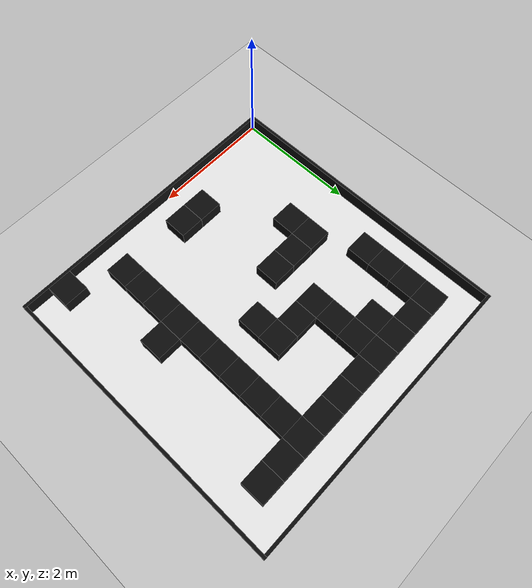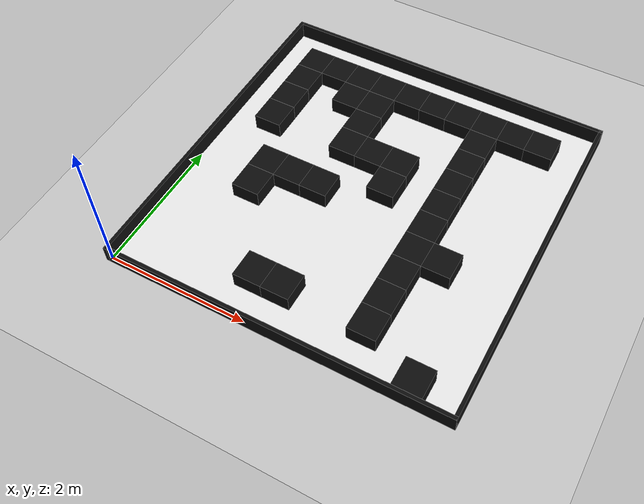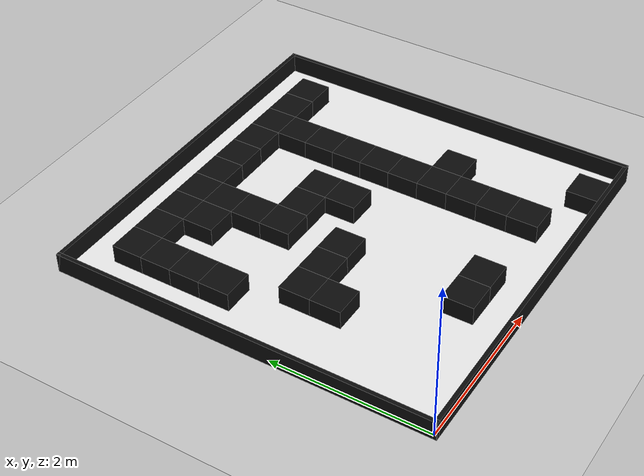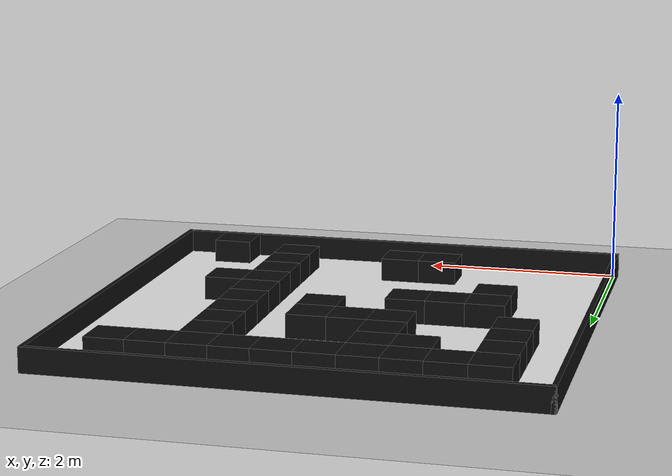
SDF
<?xml version="1.0" ?>
<sdf version="1.6">
  <world name="maze_3x3">
    <include><uri>model://sun</uri></include>
    <include><uri>model://ground_plane</uri></include>
    <model name="floor">
      <static>true</static>
      <link name="link">
        <pose>2.400000 2.400000 0.005 0 0 0</pose>
        <visual name="vis">
          <geometry><box><size>4.800000 4.800000 0.01</size></box></geometry>
          <material><ambient>0.95 0.95 0.95 1</ambient><diffuse>0.95 0.95 0.95 1</diffuse></material>
        </visual>
      </link>
    </model>
    <model name="wall_west">
      <static>true</static>
      <link name="link">
        <pose>-0.025000 2.400000 0.125000 0 0 0</pose>
        <collision name="col"><geometry><box><size>0.050000 4.900000 0.250000</size></box></geometry></collision>
        <visual name="vis">
          <geometry><box><size>0.050000 4.900000 0.250000</size></box></geometry>
          <material><ambient>0.05 0.05 0.05 1</ambient><diffuse>0.05 0.05 0.05 1</diffuse></material>
        </visual>
      </link>
    </model>
    <model name="wall_east">
      <static>true</static>
      <link name="link">
        <pose>4.825000 2.400000 0.125000 0 0 0</pose>
        <collision name="col"><geometry><box><size>0.050000 4.900000 0.250000</size></box></geometry></collision>
        <visual name="vis">
          <geometry><box><size>0.050000 4.900000 0.250000</size></box></geometry>
          <material><ambient>0.05 0.05 0.05 1</ambient><diffuse>0.05 0.05 0.05 1</diffuse></material>
        </visual>
      </link>
    </model>
    <model name="wall_south">
      <static>true</static>
      <link name="link">
        <pose>2.400000 -0.025000 0.125000 0 0 0</pose>
        <collision name="col"><geometry><box><size>4.900000 0.050000 0.250000</size></box></geometry></collision>
        <visual name="vis">
          <geometry><box><size>4.900000 0.050000 0.250000</size></box></geometry>
          <material><ambient>0.05 0.05 0.05 1</ambient><diffuse>0.05 0.05 0.05 1</diffuse></material>
        </visual>
      </link>
    </model>
    <model name="wall_north">
      <static>true</static>
      <link name="link">
        <pose>2.400000 4.825000 0.125000 0 0 0</pose>
        <collision name="col"><geometry><box><size>4.900000 0.050000 0.250000</size></box></geometry></collision>
        <visual name="vis">
          <geometry><box><size>4.900000 0.050000 0.250000</size></box></geometry>
          <material><ambient>0.05 0.05 0.05 1</ambient><diffuse>0.05 0.05 0.05 1</diffuse></material>
        </visual>
      </link>
    </model>
    <model name="cell_10_1">
      <static>true</static>
      <link name="link">
        <pose>0.600000 4.200000 0.125000 0 0 0</pose>
        <collision name="col"><geometry><box><size>0.400000 0.400000 0.250000</size></box></geometry></collision>
        <visual name="vis">
          <geometry><box><size>0.400000 0.400000 0.250000</size></box></geometry>
          <material><ambient>0.05 0.05 0.05 1</ambient><diffuse>0.05 0.05 0.05 1</diffuse></material>
        </visual>
      </link>
    </model>
    <model name="cell_10_2">
      <static>true</static>
      <link name="link">
        <pose>1.000000 4.200000 0.125000 0 0 0</pose>
        <collision name="col"><geometry><box><size>0.400000 0.400000 0.250000</size></box></geometry></collision>
        <visual name="vis">
          <geometry><box><size>0.400000 0.400000 0.250000</size></box></geometry>
          <material><ambient>0.05 0.05 0.05 1</ambient><diffuse>0.05 0.05 0.05 1</diffuse></material>
        </visual>
      </link>
    </model>
    <model name="cell_10_3">
      <static>true</static>
      <link name="link">
        <pose>1.400000 4.200000 0.125000 0 0 0</pose>
        <collision name="col"><geometry><box><size>0.400000 0.400000 0.250000</size></box></geometry></collision>
        <visual name="vis">
          <geometry><box><size>0.400000 0.400000 0.250000</size></box></geometry>
          <material><ambient>0.05 0.05 0.05 1</ambient><diffuse>0.05 0.05 0.05 1</diffuse></material>
        </visual>
      </link>
    </model>
    <model name="cell_10_4">
      <static>true</static>
      <link name="link">
        <pose>1.800000 4.200000 0.125000 0 0 0</pose>
        <collision name="col"><geometry><box><size>0.400000 0.400000 0.250000</size></box></geometry></collision>
        <visual name="vis">
          <geometry><box><size>0.400000 0.400000 0.250000</size></box></geometry>
          <material><ambient>0.05 0.05 0.05 1</ambient><diffuse>0.05 0.05 0.05 1</diffuse></material>
        </visual>
      </link>
    </model>
    <model name="cell_10_5">
      <static>true</static>
      <link name="link">
        <pose>2.200000 4.200000 0.125000 0 0 0</pose>
        <collision name="col"><geometry><box><size>0.400000 0.400000 0.250000</size></box></geometry></collision>
        <visual name="vis">
          <geometry><box><size>0.400000 0.400000 0.250000</size></box></geometry>
          <material><ambient>0.05 0.05 0.05 1</ambient><diffuse>0.05 0.05 0.05 1</diffuse></material>
        </visual>
      </link>
    </model>
    <model name="cell_10_6">
      <static>true</static>
      <link name="link">
        <pose>2.600000 4.200000 0.125000 0 0 0</pose>
        <collision name="col"><geometry><box><size>0.400000 0.400000 0.250000</size></box></geometry></collision>
        <visual name="vis">
          <geometry><box><size>0.400000 0.400000 0.250000</size></box></geometry>
          <material><ambient>0.05 0.05 0.05 1</ambient><diffuse>0.05 0.05 0.05 1</diffuse></material>
        </visual>
      </link>
    </model>
    <model name="cell_10_7">
      <static>true</static>
      <link name="link">
        <pose>3.000000 4.200000 0.125000 0 0 0</pose>
        <collision name="col"><geometry><box><size>0.400000 0.400000 0.250000</size></box></geometry></collision>
        <visual name="vis">
          <geometry><box><size>0.400000 0.400000 0.250000</size></box></geometry>
          <material><ambient>0.05 0.05 0.05 1</ambient><diffuse>0.05 0.05 0.05 1</diffuse></material>
        </visual>
      </link>
    </model>
    <model name="cell_10_8">
      <static>true</static>
      <link name="link">
        <pose>3.400000 4.200000 0.125000 0 0 0</pose>
        <collision name="col"><geometry><box><size>0.400000 0.400000 0.250000</size></box></geometry></collision>
        <visual name="vis">
          <geometry><box><size>0.400000 0.400000 0.250000</size></box></geometry>
          <material><ambient>0.05 0.05 0.05 1</ambient><diffuse>0.05 0.05 0.05 1</diffuse></material>
        </visual>
      </link>
    </model>
    <model name="cell_10_9">
      <static>true</static>
      <link name="link">
        <pose>3.800000 4.200000 0.125000 0 0 0</pose>
        <collision name="col"><geometry><box><size>0.400000 0.400000 0.250000</size></box></geometry></collision>
        <visual name="vis">
          <geometry><box><size>0.400000 0.400000 0.250000</size></box></geometry>
          <material><ambient>0.05 0.05 0.05 1</ambient><diffuse>0.05 0.05 0.05 1</diffuse></material>
        </visual>
      </link>
    </model>
    <model name="cell_10_10">
      <static>true</static>
      <link name="link">
        <pose>4.200000 4.200000 0.125000 0 0 0</pose>
        <collision name="col"><geometry><box><size>0.400000 0.400000 0.250000</size></box></geometry></collision>
        <visual name="vis">
          <geometry><box><size>0.400000 0.400000 0.250000</size></box></geometry>
          <material><ambient>0.05 0.05 0.05 1</ambient><diffuse>0.05 0.05 0.05 1</diffuse></material>
        </visual>
      </link>
    </model>
    <model name="cell_9_1">
      <static>true</static>
      <link name="link">
        <pose>0.600000 3.800000 0.125000 0 0 0</pose>
        <collision name="col"><geometry><box><size>0.400000 0.400000 0.250000</size></box></geometry></collision>
        <visual name="vis">
          <geometry><box><size>0.400000 0.400000 0.250000</size></box></geometry>
          <material><ambient>0.05 0.05 0.05 1</ambient><diffuse>0.05 0.05 0.05 1</diffuse></material>
        </visual>
      </link>
    </model>
    <model name="cell_9_3">
      <static>true</static>
      <link name="link">
        <pose>1.400000 3.800000 0.125000 0 0 0</pose>
        <collision name="col"><geometry><box><size>0.400000 0.400000 0.250000</size></box></geometry></collision>
        <visual name="vis">
          <geometry><box><size>0.400000 0.400000 0.250000</size></box></geometry>
          <material><ambient>0.05 0.05 0.05 1</ambient><diffuse>0.05 0.05 0.05 1</diffuse></material>
        </visual>
      </link>
    </model>
    <model name="cell_9_4">
      <static>true</static>
      <link name="link">
        <pose>1.800000 3.800000 0.125000 0 0 0</pose>
        <collision name="col"><geometry><box><size>0.400000 0.400000 0.250000</size></box></geometry></collision>
        <visual name="vis">
          <geometry><box><size>0.400000 0.400000 0.250000</size></box></geometry>
          <material><ambient>0.05 0.05 0.05 1</ambient><diffuse>0.05 0.05 0.05 1</diffuse></material>
        </visual>
      </link>
    </model>
    <model name="cell_9_8">
      <static>true</static>
      <link name="link">
        <pose>3.400000 3.800000 0.125000 0 0 0</pose>
        <collision name="col"><geometry><box><size>0.400000 0.400000 0.250000</size></box></geometry></collision>
        <visual name="vis">
          <geometry><box><size>0.400000 0.400000 0.250000</size></box></geometry>
          <material><ambient>0.05 0.05 0.05 1</ambient><diffuse>0.05 0.05 0.05 1</diffuse></material>
        </visual>
      </link>
    </model>
    <model name="cell_8_1">
      <static>true</static>
      <link name="link">
        <pose>0.600000 3.400000 0.125000 0 0 0</pose>
        <collision name="col"><geometry><box><size>0.400000 0.400000 0.250000</size></box></geometry></collision>
        <visual name="vis">
          <geometry><box><size>0.400000 0.400000 0.250000</size></box></geometry>
          <material><ambient>0.05 0.05 0.05 1</ambient><diffuse>0.05 0.05 0.05 1</diffuse></material>
        </visual>
      </link>
    </model>
    <model name="cell_8_4">
      <static>true</static>
      <link name="link">
        <pose>1.800000 3.400000 0.125000 0 0 0</pose>
        <collision name="col"><geometry><box><size>0.400000 0.400000 0.250000</size></box></geometry></collision>
        <visual name="vis">
          <geometry><box><size>0.400000 0.400000 0.250000</size></box></geometry>
          <material><ambient>0.05 0.05 0.05 1</ambient><diffuse>0.05 0.05 0.05 1</diffuse></material>
        </visual>
      </link>
    </model>
    <model name="cell_8_8">
      <static>true</static>
      <link name="link">
        <pose>3.400000 3.400000 0.125000 0 0 0</pose>
        <collision name="col"><geometry><box><size>0.400000 0.400000 0.250000</size></box></geometry></collision>
        <visual name="vis">
          <geometry><box><size>0.400000 0.400000 0.250000</size></box></geometry>
          <material><ambient>0.05 0.05 0.05 1</ambient><diffuse>0.05 0.05 0.05 1</diffuse></material>
        </visual>
      </link>
    </model>
    <model name="cell_7_1">
      <static>true</static>
      <link name="link">
        <pose>0.600000 3.000000 0.125000 0 0 0</pose>
        <collision name="col"><geometry><box><size>0.400000 0.400000 0.250000</size></box></geometry></collision>
        <visual name="vis">
          <geometry><box><size>0.400000 0.400000 0.250000</size></box></geometry>
          <material><ambient>0.05 0.05 0.05 1</ambient><diffuse>0.05 0.05 0.05 1</diffuse></material>
        </visual>
      </link>
    </model>
    <model name="cell_7_4">
      <static>true</static>
      <link name="link">
        <pose>1.800000 3.000000 0.125000 0 0 0</pose>
        <collision name="col"><geometry><box><size>0.400000 0.400000 0.250000</size></box></geometry></collision>
        <visual name="vis">
          <geometry><box><size>0.400000 0.400000 0.250000</size></box></geometry>
          <material><ambient>0.05 0.05 0.05 1</ambient><diffuse>0.05 0.05 0.05 1</diffuse></material>
        </visual>
      </link>
    </model>
    <model name="cell_7_5">
      <static>true</static>
      <link name="link">
        <pose>2.200000 3.000000 0.125000 0 0 0</pose>
        <collision name="col"><geometry><box><size>0.400000 0.400000 0.250000</size></box></geometry></collision>
        <visual name="vis">
          <geometry><box><size>0.400000 0.400000 0.250000</size></box></geometry>
          <material><ambient>0.05 0.05 0.05 1</ambient><diffuse>0.05 0.05 0.05 1</diffuse></material>
        </visual>
      </link>
    </model>
    <model name="cell_7_6">
      <static>true</static>
      <link name="link">
        <pose>2.600000 3.000000 0.125000 0 0 0</pose>
        <collision name="col"><geometry><box><size>0.400000 0.400000 0.250000</size></box></geometry></collision>
        <visual name="vis">
          <geometry><box><size>0.400000 0.400000 0.250000</size></box></geometry>
          <material><ambient>0.05 0.05 0.05 1</ambient><diffuse>0.05 0.05 0.05 1</diffuse></material>
        </visual>
      </link>
    </model>
    <model name="cell_7_8">
      <static>true</static>
      <link name="link">
        <pose>3.400000 3.000000 0.125000 0 0 0</pose>
        <collision name="col"><geometry><box><size>0.400000 0.400000 0.250000</size></box></geometry></collision>
        <visual name="vis">
          <geometry><box><size>0.400000 0.400000 0.250000</size></box></geometry>
          <material><ambient>0.05 0.05 0.05 1</ambient><diffuse>0.05 0.05 0.05 1</diffuse></material>
        </visual>
      </link>
    </model>
    <model name="cell_6_6">
      <static>true</static>
      <link name="link">
        <pose>2.600000 2.600000 0.125000 0 0 0</pose>
        <collision name="col"><geometry><box><size>0.400000 0.400000 0.250000</size></box></geometry></collision>
        <visual name="vis">
          <geometry><box><size>0.400000 0.400000 0.250000</size></box></geometry>
          <material><ambient>0.05 0.05 0.05 1</ambient><diffuse>0.05 0.05 0.05 1</diffuse></material>
        </visual>
      </link>
    </model>
    <model name="cell_6_8">
      <static>true</static>
      <link name="link">
        <pose>3.400000 2.600000 0.125000 0 0 0</pose>
        <collision name="col"><geometry><box><size>0.400000 0.400000 0.250000</size></box></geometry></collision>
        <visual name="vis">
          <geometry><box><size>0.400000 0.400000 0.250000</size></box></geometry>
          <material><ambient>0.05 0.05 0.05 1</ambient><diffuse>0.05 0.05 0.05 1</diffuse></material>
        </visual>
      </link>
    </model>
    <model name="cell_5_2">
      <static>true</static>
      <link name="link">
        <pose>1.000000 2.200000 0.125000 0 0 0</pose>
        <collision name="col"><geometry><box><size>0.400000 0.400000 0.250000</size></box></geometry></collision>
        <visual name="vis">
          <geometry><box><size>0.400000 0.400000 0.250000</size></box></geometry>
          <material><ambient>0.05 0.05 0.05 1</ambient><diffuse>0.05 0.05 0.05 1</diffuse></material>
        </visual>
      </link>
    </model>
    <model name="cell_5_3">
      <static>true</static>
      <link name="link">
        <pose>1.400000 2.200000 0.125000 0 0 0</pose>
        <collision name="col"><geometry><box><size>0.400000 0.400000 0.250000</size></box></geometry></collision>
        <visual name="vis">
          <geometry><box><size>0.400000 0.400000 0.250000</size></box></geometry>
          <material><ambient>0.05 0.05 0.05 1</ambient><diffuse>0.05 0.05 0.05 1</diffuse></material>
        </visual>
      </link>
    </model>
    <model name="cell_5_4">
      <static>true</static>
      <link name="link">
        <pose>1.800000 2.200000 0.125000 0 0 0</pose>
        <collision name="col"><geometry><box><size>0.400000 0.400000 0.250000</size></box></geometry></collision>
        <visual name="vis">
          <geometry><box><size>0.400000 0.400000 0.250000</size></box></geometry>
          <material><ambient>0.05 0.05 0.05 1</ambient><diffuse>0.05 0.05 0.05 1</diffuse></material>
        </visual>
      </link>
    </model>
    <model name="cell_5_8">
      <static>true</static>
      <link name="link">
        <pose>3.400000 2.200000 0.125000 0 0 0</pose>
        <collision name="col"><geometry><box><size>0.400000 0.400000 0.250000</size></box></geometry></collision>
        <visual name="vis">
          <geometry><box><size>0.400000 0.400000 0.250000</size></box></geometry>
          <material><ambient>0.05 0.05 0.05 1</ambient><diffuse>0.05 0.05 0.05 1</diffuse></material>
        </visual>
      </link>
    </model>
    <model name="cell_4_2">
      <static>true</static>
      <link name="link">
        <pose>1.000000 1.800000 0.125000 0 0 0</pose>
        <collision name="col"><geometry><box><size>0.400000 0.400000 0.250000</size></box></geometry></collision>
        <visual name="vis">
          <geometry><box><size>0.400000 0.400000 0.250000</size></box></geometry>
          <material><ambient>0.05 0.05 0.05 1</ambient><diffuse>0.05 0.05 0.05 1</diffuse></material>
        </visual>
      </link>
    </model>
    <model name="cell_4_8">
      <static>true</static>
      <link name="link">
        <pose>3.400000 1.800000 0.125000 0 0 0</pose>
        <collision name="col"><geometry><box><size>0.400000 0.400000 0.250000</size></box></geometry></collision>
        <visual name="vis">
          <geometry><box><size>0.400000 0.400000 0.250000</size></box></geometry>
          <material><ambient>0.05 0.05 0.05 1</ambient><diffuse>0.05 0.05 0.05 1</diffuse></material>
        </visual>
      </link>
    </model>
    <model name="cell_4_9">
      <static>true</static>
      <link name="link">
        <pose>3.800000 1.800000 0.125000 0 0 0</pose>
        <collision name="col"><geometry><box><size>0.400000 0.400000 0.250000</size></box></geometry></collision>
        <visual name="vis">
          <geometry><box><size>0.400000 0.400000 0.250000</size></box></geometry>
          <material><ambient>0.05 0.05 0.05 1</ambient><diffuse>0.05 0.05 0.05 1</diffuse></material>
        </visual>
      </link>
    </model>
    <model name="cell_3_8">
      <static>true</static>
      <link name="link">
        <pose>3.400000 1.400000 0.125000 0 0 0</pose>
        <collision name="col"><geometry><box><size>0.400000 0.400000 0.250000</size></box></geometry></collision>
        <visual name="vis">
          <geometry><box><size>0.400000 0.400000 0.250000</size></box></geometry>
          <material><ambient>0.05 0.05 0.05 1</ambient><diffuse>0.05 0.05 0.05 1</diffuse></material>
        </visual>
      </link>
    </model>
    <model name="cell_2_8">
      <static>true</static>
      <link name="link">
        <pose>3.400000 1.000000 0.125000 0 0 0</pose>
        <collision name="col"><geometry><box><size>0.400000 0.400000 0.250000</size></box></geometry></collision>
        <visual name="vis">
          <geometry><box><size>0.400000 0.400000 0.250000</size></box></geometry>
          <material><ambient>0.05 0.05 0.05 1</ambient><diffuse>0.05 0.05 0.05 1</diffuse></material>
        </visual>
      </link>
    </model>
    <model name="cell_1_4">
      <static>true</static>
      <link name="link">
        <pose>1.800000 0.600000 0.125000 0 0 0</pose>
        <collision name="col"><geometry><box><size>0.400000 0.400000 0.250000</size></box></geometry></collision>
        <visual name="vis">
          <geometry><box><size>0.400000 0.400000 0.250000</size></box></geometry>
          <material><ambient>0.05 0.05 0.05 1</ambient><diffuse>0.05 0.05 0.05 1</diffuse></material>
        </visual>
      </link>
    </model>
    <model name="cell_1_5">
      <static>true</static>
      <link name="link">
        <pose>2.200000 0.600000 0.125000 0 0 0</pose>
        <collision name="col"><geometry><box><size>0.400000 0.400000 0.250000</size></box></geometry></collision>
        <visual name="vis">
          <geometry><box><size>0.400000 0.400000 0.250000</size></box></geometry>
          <material><ambient>0.05 0.05 0.05 1</ambient><diffuse>0.05 0.05 0.05 1</diffuse></material>
        </visual>
      </link>
    </model>
    <model name="cell_1_8">
      <static>true</static>
      <link name="link">
        <pose>3.400000 0.600000 0.125000 0 0 0</pose>
        <collision name="col"><geometry><box><size>0.400000 0.400000 0.250000</size></box></geometry></collision>
        <visual name="vis">
          <geometry><box><size>0.400000 0.400000 0.250000</size></box></geometry>
          <material><ambient>0.05 0.05 0.05 1</ambient><diffuse>0.05 0.05 0.05 1</diffuse></material>
        </visual>
      </link>
    </model>
    <model name="cell_0_10">
      <static>true</static>
      <link name="link">
        <pose>4.200000 0.200000 0.125000 0 0 0</pose>
        <collision name="col"><geometry><box><size>0.400000 0.400000 0.250000</size></box></geometry></collision>
        <visual name="vis">
          <geometry><box><size>0.400000 0.400000 0.250000</size></box></geometry>
          <material><ambient>0.05 0.05 0.05 1</ambient><diffuse>0.05 0.05 0.05 1</diffuse></material>
        </visual>
      </link>
    </model>
  </world>
</sdf>
